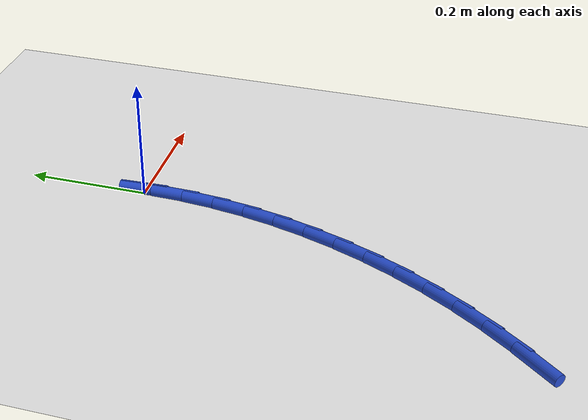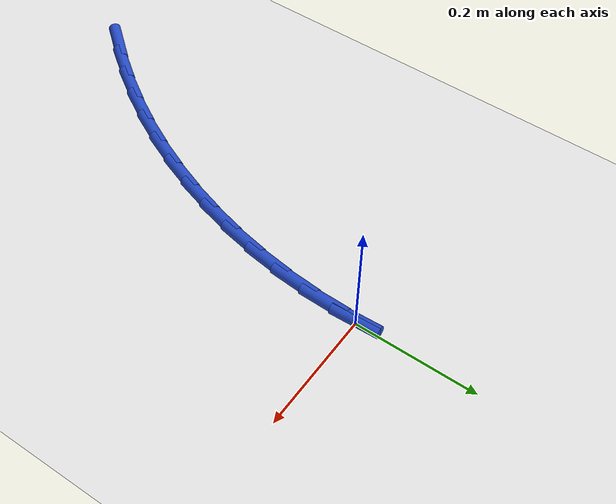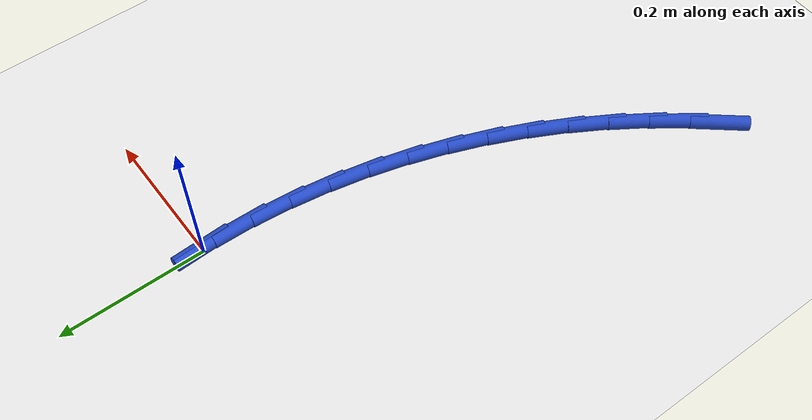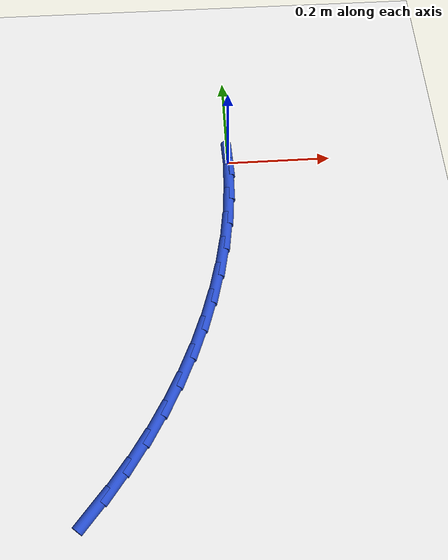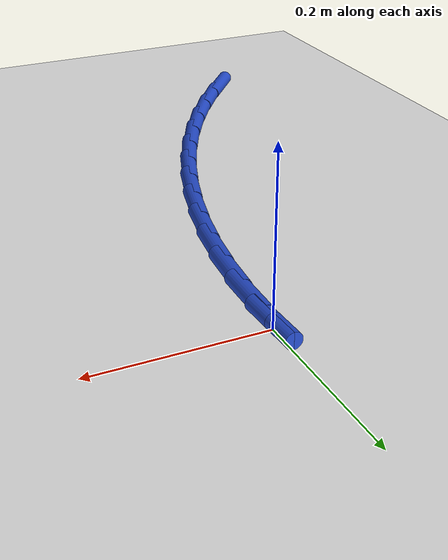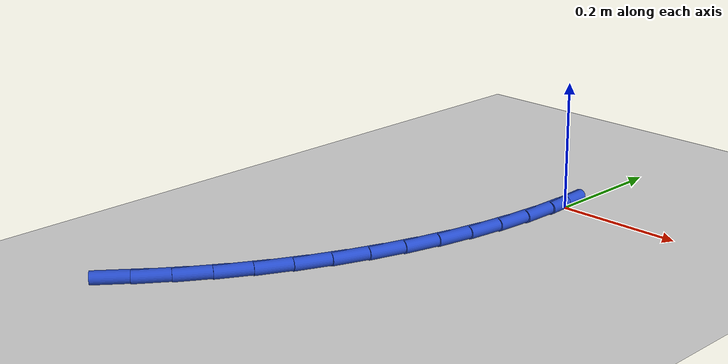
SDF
<sdf version="1.6">
 <world name="default">
  <model name="ground_plane">
   <static>1</static>
   <link name="link">
    <collision name="collision">
     <geometry><plane><normal>0 0 1</normal><size>100 100</size></plane></geometry>
     <surface><friction><ode><mu>100</mu><mu2>50</mu2></ode></friction></surface>
    </collision>
    <visual name="visual">
     <cast_shadows>0</cast_shadows>
     <geometry><plane><normal>0 0 1</normal><size>100 100</size></plane></geometry>
     <material>
      <script><uri>file://media/materials/scripts/gazebo.material</uri><name>Gazebo/WhiteGlow</name></script>
     </material>
    </visual>
   </link>
  </model>
  <model name="line">
   <link name="link_0">
    <pose>4.163336342344337e-17 8.326672684688674e-17 0.01 0 1.57 -1.5289315457539685</pose>
    <collision name="collision">
     <geometry><cylinder><radius>0.01</radius><length>0.08</length></cylinder></geometry>
    </collision>
    <visual name="visual">
     <material>
      <script><name>Gazebo/Blue</name><uri>file://media/materials/scripts/gazebo.material</uri></script>
     </material>
     <geometry><cylinder><radius>0.01</radius><length>0.08</length></cylinder></geometry>
    </visual>
   </link>
   <link name="link_107">
    <pose>-0.24589642154502753 -0.6562443420434148 0.01 0 1.57 0.8809161930523055</pose>
    <collision name="collision">
     <geometry><cylinder><radius>0.01</radius><length>0.08</length></cylinder></geometry>
    </collision>
    <visual name="visual">
     <material>
      <script><name>Gazebo/Blue</name><uri>file://media/materials/scripts/gazebo.material</uri></script>
     </material>
     <geometry><cylinder><radius>0.01</radius><length>0.08</length></cylinder></geometry>
    </visual>
   </link>
   <link name="link_108">
    <pose>-0.21088447219438045 -0.613812538807178 0.01 0 1.57 0.9354445420546916</pose>
    <collision name="collision">
     <geometry><cylinder><radius>0.01</radius><length>0.08</length></cylinder></geometry>
    </collision>
    <visual name="visual">
     <material>
      <script><name>Gazebo/Blue</name><uri>file://media/materials/scripts/gazebo.material</uri></script>
     </material>
     <geometry><cylinder><radius>0.01</radius><length>0.08</length></cylinder></geometry>
    </visual>
   </link>
   <link name="link_109">
    <pose>-0.17822452802326283 -0.5695184847636255 0.01 0 1.57 0.9902690532978655</pose>
    <collision name="collision">
     <geometry><cylinder><radius>0.01</radius><length>0.08</length></cylinder></geometry>
    </collision>
    <visual name="visual">
     <material>
      <script><name>Gazebo/Blue</name><uri>file://media/materials/scripts/gazebo.material</uri></script>
     </material>
     <geometry><cylinder><radius>0.01</radius><length>0.08</length></cylinder></geometry>
    </visual>
   </link>
   <link name="link_110">
    <pose>-0.14801886722904486 -0.5234678165480546 0.01 0 1.57 1.0454704932151755</pose>
    <collision name="collision">
     <geometry><cylinder><radius>0.01</radius><length>0.08</length></cylinder></geometry>
    </collision>
    <visual name="visual">
     <material>
      <script><name>Gazebo/Blue</name><uri>file://media/materials/scripts/gazebo.material</uri></script>
     </material>
     <geometry><cylinder><radius>0.01</radius><length>0.08</length></cylinder></geometry>
    </visual>
   </link>
   <link name="link_111">
    <pose>-0.12036925410414771 -0.4757677222611074 0.01 0 1.57 1.1006705226445088</pose>
    <collision name="collision">
     <geometry><cylinder><radius>0.01</radius><length>0.08</length></cylinder></geometry>
    </collision>
    <visual name="visual">
     <material>
      <script><name>Gazebo/Blue</name><uri>file://media/materials/scripts/gazebo.material</uri></script>
     </material>
     <geometry><cylinder><radius>0.01</radius><length>0.08</length></cylinder></geometry>
    </visual>
   </link>
   <link name="link_112">
    <pose>-0.09536584362129868 -0.42656043823014606 0.01 0 1.57 1.155592910174574</pose>
    <collision name="collision">
     <geometry><cylinder><radius>0.01</radius><length>0.08</length></cylinder></geometry>
    </collision>
    <visual name="visual">
     <material>
      <script><name>Gazebo/Blue</name><uri>file://media/materials/scripts/gazebo.material</uri></script>
     </material>
     <geometry><cylinder><radius>0.01</radius><length>0.08</length></cylinder></geometry>
    </visual>
   </link>
   <link name="link_113">
    <pose>-0.07308729718439659 -0.37602289956048235 0.01 0 1.57 1.2104662188228272</pose>
    <collision name="collision">
     <geometry><cylinder><radius>0.01</radius><length>0.08</length></cylinder></geometry>
    </collision>
    <visual name="visual">
     <material>
      <script><name>Gazebo/Blue</name><uri>file://media/materials/scripts/gazebo.material</uri></script>
     </material>
     <geometry><cylinder><radius>0.01</radius><length>0.08</length></cylinder></geometry>
    </visual>
   </link>
   <link name="link_114">
    <pose>-0.053611785443291246 -0.32433352293081624 0.01 0 1.57 1.2655400616355168</pose>
    <collision name="collision">
     <geometry><cylinder><radius>0.01</radius><length>0.08</length></cylinder></geometry>
    </collision>
    <visual name="visual">
     <material>
      <script><name>Gazebo/Blue</name><uri>file://media/materials/scripts/gazebo.material</uri></script>
     </material>
     <geometry><cylinder><radius>0.01</radius><length>0.08</length></cylinder></geometry>
    </visual>
   </link>
   <link name="link_115">
    <pose>-0.03701747904783259 -0.2716707250198475 0.01 0 1.57 1.3210613033351732</pose>
    <collision name="collision">
     <geometry><cylinder><radius>0.01</radius><length>0.08</length></cylinder></geometry>
    </collision>
    <visual name="visual">
     <material>
      <script><name>Gazebo/Blue</name><uri>file://media/materials/scripts/gazebo.material</uri></script>
     </material>
     <geometry><cylinder><radius>0.01</radius><length>0.08</length></cylinder></geometry>
    </visual>
   </link>
   <link name="link_116">
    <pose>-0.023382548647871253 -0.21821292250627827 0.01 0 1.57 1.3772711759012672</pose>
    <collision name="collision">
     <geometry><cylinder><radius>0.01</radius><length>0.08</length></cylinder></geometry>
    </collision>
    <visual name="visual">
     <material>
      <script><name>Gazebo/Blue</name><uri>file://media/materials/scripts/gazebo.material</uri></script>
     </material>
     <geometry><cylinder><radius>0.01</radius><length>0.08</length></cylinder></geometry>
    </visual>
   </link>
   <link name="link_117">
    <pose>-0.012785164893257159 -0.16413853206880835 0.01 0 1.57 1.4344018220404535</pose>
    <collision name="collision">
     <geometry><cylinder><radius>0.01</radius><length>0.08</length></cylinder></geometry>
    </collision>
    <visual name="visual">
     <material>
      <script><name>Gazebo/Blue</name><uri>file://media/materials/scripts/gazebo.material</uri></script>
     </material>
     <geometry><cylinder><radius>0.01</radius><length>0.08</length></cylinder></geometry>
    </visual>
   </link>
   <link name="link_118">
    <pose>-0.005303498433840481 -0.10962597038613843 0.01 0 1.57 1.492671976880422</pose>
    <collision name="collision">
     <geometry><cylinder><radius>0.01</radius><length>0.08</length></cylinder></geometry>
    </collision>
    <visual name="visual">
     <material>
      <script><name>Gazebo/Blue</name><uri>file://media/materials/scripts/gazebo.material</uri></script>
     </material>
     <geometry><cylinder><radius>0.01</radius><length>0.08</length></cylinder></geometry>
    </visual>
   </link>
   <link name="link_119">
    <pose>-0.0010157199194713203 -0.054853654136968306 0.01 0 1.57 1.5522815373840648</pose>
    <collision name="collision">
     <geometry><cylinder><radius>0.01</radius><length>0.08</length></cylinder></geometry>
    </collision>
    <visual name="visual">
     <material>
      <script><name>Gazebo/Blue</name><uri>file://media/materials/scripts/gazebo.material</uri></script>
     </material>
     <geometry><cylinder><radius>0.01</radius><length>0.08</length></cylinder></geometry>
    </visual>
   </link>
   <link name="link_120">
    <pose>1.0408340855860843e-17 -8.326672684688674e-17 0.01 0 1.57 -1.5281878111328784</pose>
    <collision name="collision">
     <geometry><cylinder><radius>0.01</radius><length>0.08</length></cylinder></geometry>
    </collision>
    <visual name="visual">
     <material>
      <script><name>Gazebo/Blue</name><uri>file://media/materials/scripts/gazebo.material</uri></script>
     </material>
     <geometry><cylinder><radius>0.01</radius><length>0.08</length></cylinder></geometry>
    </visual>
   </link>
  </model>
 </world>
</sdf>
